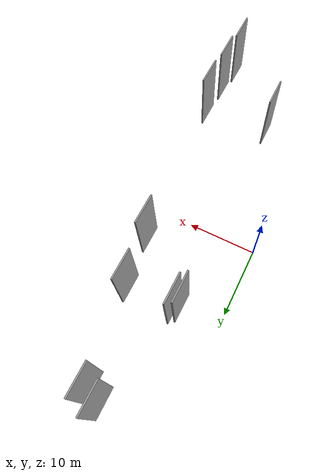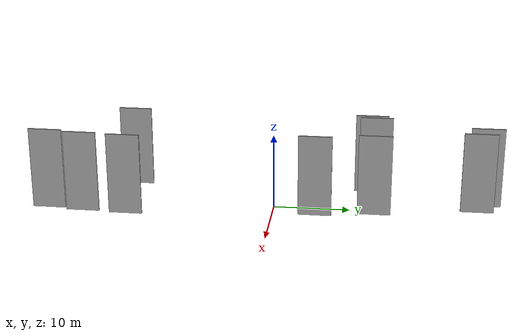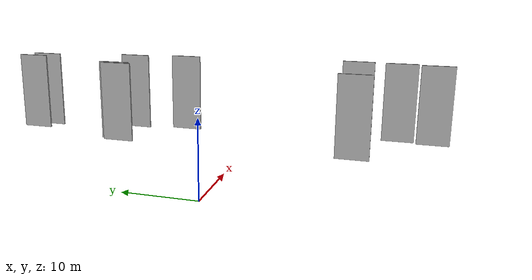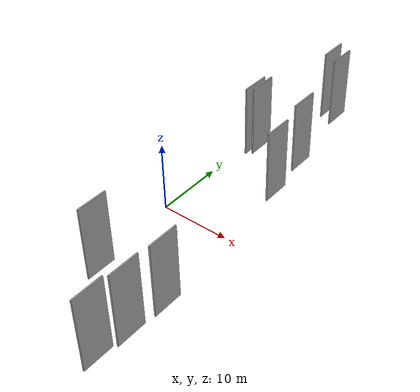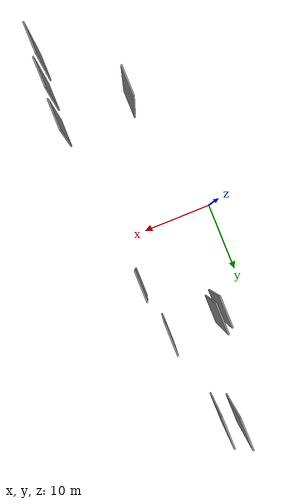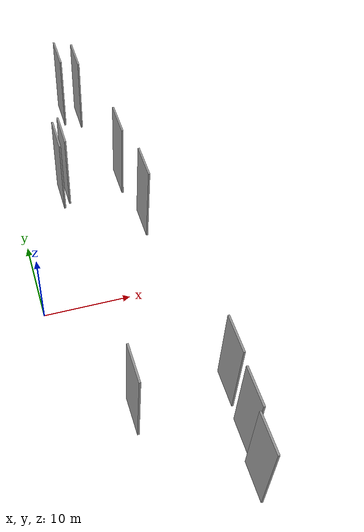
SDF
<sdf version="1.6">
 <world name="default">
  <scene>
   <sky><clouds><speed>12</speed></clouds></sky>
   <ambient>0.4 0.4 0.4 1</ambient>
   <background>0.7 0.7 0.7 1</background>
   <shadows>1</shadows>
  </scene>
  <gravity>0 0 -9.8066</gravity>
  <magnetic_field>6e-06 2.3e-05 -4.2e-05</magnetic_field>
  <physics default="0" name="default_physics" type="ode">
   <ode>
    <solver>
     <type>quick</type>
     <iters>10</iters>
     <sor>1.0</sor>
     <use_dynamic_moi_rescaling>0</use_dynamic_moi_rescaling>
    </solver>
    <constraints>
     <cfm>0</cfm>
     <erp>0.2</erp>
     <contact_max_correcting_vel>100</contact_max_correcting_vel>
     <contact_surface_layer>0.001</contact_surface_layer>
    </constraints>
   </ode>
   <max_step_size>0.004</max_step_size>
   <real_time_factor>1</real_time_factor>
   <real_time_update_rate>250</real_time_update_rate>
  </physics>
  <light name="sun" type="directional">
   <pose>0 0 10 0 0 0</pose>
   <diffuse>0.8 0.8 0.8 1</diffuse>
   <specular>0.2 0.2 0.2 1</specular>
   <attenuation>
    <range>1000</range>
    <constant>0.9</constant>
    <linear>0.01</linear>
    <quadratic>0.001</quadratic>
   </attenuation>
   <direction>-0.5 0.1 -0.9</direction>
  </light>
  <model name="grey_wall_1">
   <static>1</static>
   <pose>14.4040 -25.8522 5.0 0.000000 0.000000 1.570796</pose>
   <link name="link">
    <pose>0 0 5.00 0 0 0</pose>
    <collision name="collision"><geometry><box><size>4.00 0.2 10.00</size></box></geometry></collision>
    <visual name="visual">
     <cast_shadows>0</cast_shadows>
     <geometry><box><size>4.00 0.2 10.00</size></box></geometry>
     <material>
      <script>
       <uri>model://grey_wall/materials/scripts</uri>
       <uri>model://grey_wall/materials/textures</uri>
       <name>vrc/grey_wall</name>
      </script>
     </material>
    </visual>
   </link>
  </model>
  <model name="grey_wall_2">
   <static>1</static>
   <pose>14.8788 -21.5888 5.0 0.000000 0.000000 1.570796</pose>
   <link name="link">
    <pose>0 0 5.00 0 0 0</pose>
    <collision name="collision"><geometry><box><size>4.00 0.2 10.00</size></box></geometry></collision>
    <visual name="visual">
     <cast_shadows>0</cast_shadows>
     <geometry><box><size>4.00 0.2 10.00</size></box></geometry>
     <material>
      <script>
       <uri>model://grey_wall/materials/scripts</uri>
       <uri>model://grey_wall/materials/textures</uri>
       <name>vrc/grey_wall</name>
      </script>
     </material>
    </visual>
   </link>
  </model>
  <model name="grey_wall_3">
   <static>1</static>
   <pose>5.1164 12.7699 5.0 0.000000 0.000000 1.570796</pose>
   <link name="link">
    <pose>0 0 5.00 0 0 0</pose>
    <collision name="collision"><geometry><box><size>4.00 0.2 10.00</size></box></geometry></collision>
    <visual name="visual">
     <cast_shadows>0</cast_shadows>
     <geometry><box><size>4.00 0.2 10.00</size></box></geometry>
     <material>
      <script>
       <uri>model://grey_wall/materials/scripts</uri>
       <uri>model://grey_wall/materials/textures</uri>
       <name>vrc/grey_wall</name>
      </script>
     </material>
    </visual>
   </link>
  </model>
  <model name="grey_wall_4">
   <static>1</static>
   <pose>5.8276 13.3285 5.0 0.000000 0.000000 1.570796</pose>
   <link name="link">
    <pose>0 0 5.00 0 0 0</pose>
    <collision name="collision"><geometry><box><size>4.00 0.2 10.00</size></box></geometry></collision>
    <visual name="visual">
     <cast_shadows>0</cast_shadows>
     <geometry><box><size>4.00 0.2 10.00</size></box></geometry>
     <material>
      <script>
       <uri>model://grey_wall/materials/scripts</uri>
       <uri>model://grey_wall/materials/textures</uri>
       <name>vrc/grey_wall</name>
      </script>
     </material>
    </visual>
   </link>
  </model>
  <model name="grey_wall_5">
   <static>1</static>
   <pose>15.1404 -16.2938 5.0 0.000000 0.000000 1.570796</pose>
   <link name="link">
    <pose>0 0 5.00 0 0 0</pose>
    <collision name="collision"><geometry><box><size>4.00 0.2 10.00</size></box></geometry></collision>
    <visual name="visual">
     <cast_shadows>0</cast_shadows>
     <geometry><box><size>4.00 0.2 10.00</size></box></geometry>
     <material>
      <script>
       <uri>model://grey_wall/materials/scripts</uri>
       <uri>model://grey_wall/materials/textures</uri>
       <name>vrc/grey_wall</name>
      </script>
     </material>
    </visual>
   </link>
  </model>
  <model name="grey_wall_6">
   <static>1</static>
   <pose>13.2026 6.3448 5.0 0.000000 0.000000 1.570796</pose>
   <link name="link">
    <pose>0 0 5.00 0 0 0</pose>
    <collision name="collision"><geometry><box><size>4.00 0.2 10.00</size></box></geometry></collision>
    <visual name="visual">
     <cast_shadows>0</cast_shadows>
     <geometry><box><size>4.00 0.2 10.00</size></box></geometry>
     <material>
      <script>
       <uri>model://grey_wall/materials/scripts</uri>
       <uri>model://grey_wall/materials/textures</uri>
       <name>vrc/grey_wall</name>
      </script>
     </material>
    </visual>
   </link>
  </model>
  <model name="grey_wall_7">
   <static>1</static>
   <pose>10.1816 25.7228 5.0 0.000000 0.000000 1.570796</pose>
   <link name="link">
    <pose>0 0 5.00 0 0 0</pose>
    <collision name="collision"><geometry><box><size>4.00 0.2 10.00</size></box></geometry></collision>
    <visual name="visual">
     <cast_shadows>0</cast_shadows>
     <geometry><box><size>4.00 0.2 10.00</size></box></geometry>
     <material>
      <script>
       <uri>model://grey_wall/materials/scripts</uri>
       <uri>model://grey_wall/materials/textures</uri>
       <name>vrc/grey_wall</name>
      </script>
     </material>
    </visual>
   </link>
  </model>
  <model name="grey_wall_8">
   <static>1</static>
   <pose>5.5822 -16.7587 5.0 0.000000 0.000000 1.570796</pose>
   <link name="link">
    <pose>0 0 5.00 0 0 0</pose>
    <collision name="collision"><geometry><box><size>4.00 0.2 10.00</size></box></geometry></collision>
    <visual name="visual">
     <cast_shadows>0</cast_shadows>
     <geometry><box><size>4.00 0.2 10.00</size></box></geometry>
     <material>
      <script>
       <uri>model://grey_wall/materials/scripts</uri>
       <uri>model://grey_wall/materials/textures</uri>
       <name>vrc/grey_wall</name>
      </script>
     </material>
    </visual>
   </link>
  </model>
  <model name="grey_wall_9">
   <static>1</static>
   <pose>12.2277 13.3899 5.0 0.000000 0.000000 1.570796</pose>
   <link name="link">
    <pose>0 0 5.00 0 0 0</pose>
    <collision name="collision"><geometry><box><size>4.00 0.2 10.00</size></box></geometry></collision>
    <visual name="visual">
     <cast_shadows>0</cast_shadows>
     <geometry><box><size>4.00 0.2 10.00</size></box></geometry>
     <material>
      <script>
       <uri>model://grey_wall/materials/scripts</uri>
       <uri>model://grey_wall/materials/textures</uri>
       <name>vrc/grey_wall</name>
      </script>
     </material>
    </visual>
   </link>
  </model>
  <model name="grey_wall_10">
   <static>1</static>
   <pose>8.2411 26.6605 5.0 0.000000 0.000000 1.570796</pose>
   <link name="link">
    <pose>0 0 5.00 0 0 0</pose>
    <collision name="collision"><geometry><box><size>4.00 0.2 10.00</size></box></geometry></collision>
    <visual name="visual">
     <cast_shadows>0</cast_shadows>
     <geometry><box><size>4.00 0.2 10.00</size></box></geometry>
     <material>
      <script>
       <uri>model://grey_wall/materials/scripts</uri>
       <uri>model://grey_wall/materials/textures</uri>
       <name>vrc/grey_wall</name>
      </script>
     </material>
    </visual>
   </link>
  </model>
 </world>
</sdf>
